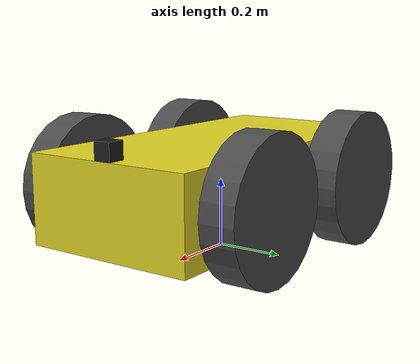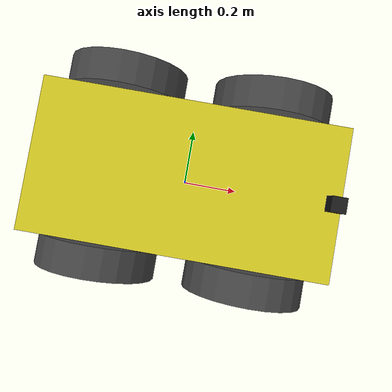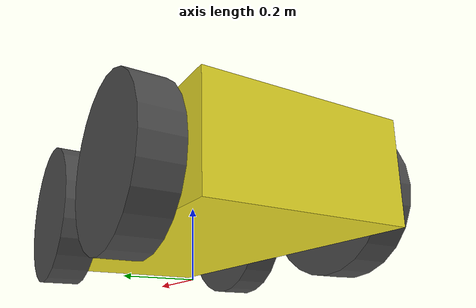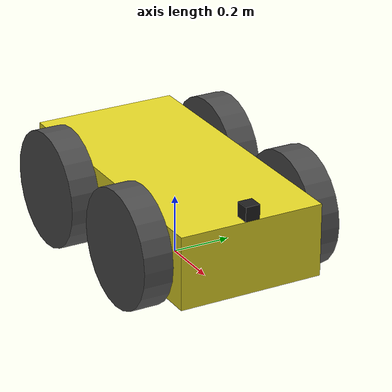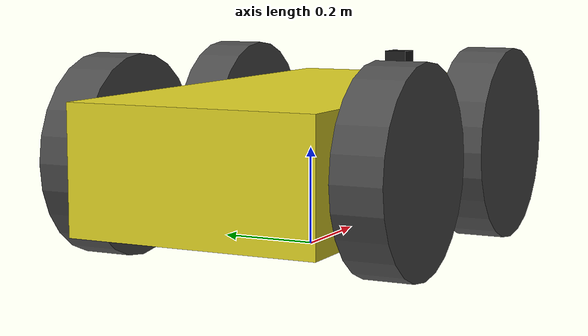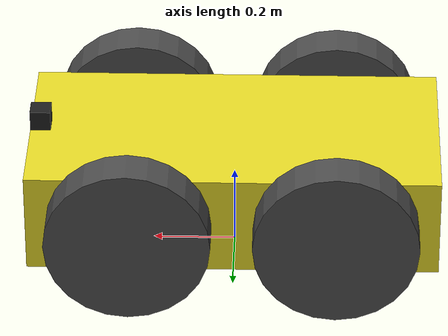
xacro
<?xml version="1.0"?>
<robot name="labrob" xmlns:xacro="http://www.ros.org/wiki/xacro">

  <!-- Included URDF/XACRO Files -->
  <xacro:include filename="$(find urdf_serp)/urdf/robot_movil/materials.urdf.xacro" />
  <xacro:include filename="$(find urdf_serp)/urdf/robot_movil/wheel.urdf.xacro" />

  <!-- PROPERTY LIST -->
  <!--All units in m-kg-s-radians unit system -->
  <property name="M_PI" value="3.1415926535897931" />

  <!-- Main Body-base -->
  <property name="base_x_size" value="1.0" />
  <property name="base_y_size" value="0.5" />
  <property name="base_z_size" value="0.25" />
  <property name="base_mass" value="35" /> <!-- in kg-->

  <!--Inertial macros for the box and cylinder. Units are kg*m^2-->
  <macro name="box_inertia" params="m x y z">
    <inertia  ixx="${m*(y*y+z*z)/12}" ixy = "0" ixz = "0"
              iyy="${m*(x*x+z*z)/12}" iyz = "0"
              izz="${m*(x*x+z*z)/12}" />
  </macro>

  <!-- BASE-FOOTPRINT -->
  <!-- base_footprint is a fictitious link(frame) that is on the ground right below base_link origin -->
  <link name="base_footprint">
    <inertial>
      <mass value="0.0001" />
      <origin xyz="0 0 0" />
      <inertia ixx="0.0001" ixy="0.0" ixz="0.0"
          iyy="0.0001" iyz="0.0"
          izz="0.0001" />
    </inertial>
    <visual>
        <origin xyz="0 0 0" rpy="0 0 0" />
        <geometry>
            <box size="0.001 0.001 0.001" />
        </geometry>
    </visual>
  </link>

  <gazebo reference="base_footprint">
    <turnGravityOff>false</turnGravityOff>
  </gazebo>

  <joint name="base_footprint_joint" type="fixed">
  <origin xyz="0 0 ${wheel_radius - base_z_origin_to_wheel_origin}" rpy="0 0 0" />
    <parent link="base_footprint"/>
    <child link="base_link" />
  </joint>

  <!-- BASE-LINK -->
  <!--Actual body/chassis of the robot-->
  <link name="base_link">
    <inertial>
      <mass value="${base_mass}" />
      <origin xyz="0 0 0" />
      <!--The 3x3 rotational inertia matrix. -->
      <box_inertia  m="${base_mass}" x="${base_x_size}" y="${base_y_size}" z="${base_z_size}"/>
    </inertial>
    <visual>
      <origin xyz="0 0 0" rpy="0 0 0" />
      <geometry>
        <box size="1 0.5 0.25"/>
      </geometry>
      <material name="Yellow" />
    </visual>
    <collision>
      <origin xyz="0 0 0" rpy="0 0 0 " />
      <geometry>
        <box size="1 0.5 0.25"/>
      </geometry>
    </collision>
  </link>
  <gazebo reference="base_link">
    <material>Gazebo/Green</material>
    <turnGravityOff>false</turnGravityOff>
  </gazebo>

  <!-- WHEELs -->
  <wheel fb="front" lr="right" parent="base_link" translateX="1" translateY="-1" flipY="-1"/>
  <wheel fb="front" lr="left" parent="base_link" translateX="1" translateY="1" flipY="-1"/>
  <wheel fb="back" lr="right" parent="base_link" translateX="-1" translateY="-1" flipY="-1"/>
  <wheel fb="back" lr="left" parent="base_link" translateX="-1" translateY="1" flipY="-1"/>

  <gazebo>
    <plugin name="skid_steer_drive_controller" filename="libgazebo_ros_skid_steer_drive.so">
      <alwaysOn>true</alwaysOn>
      <updateRate>100.0</updateRate>
      <leftFrontJoint>front_left_wheel_joint</leftFrontJoint>
      <rightFrontJoint>front_right_wheel_joint</rightFrontJoint>
      <leftRearJoint>back_left_wheel_joint</leftRearJoint>
      <rightRearJoint>back_right_wheel_joint</rightRearJoint>
      <wheelSeparation>${base_y_size}</wheelSeparation>
      <wheelDiameter>${2*wheel_radius}</wheelDiameter>
      <torque>35</torque>
      <broadcastTF>1</broadcastTF>
      <odometryFrame>map</odometryFrame>
      <commandTopic>cmd_vel</commandTopic>
      <odometryTopic>odom</odometryTopic>
      <robotBaseFrame>base_footprint</robotBaseFrame>
    </plugin>
    <plugin name="gazebo_ros_control" filename="libgazebo_ros_control.so" />
  </gazebo>

<!-- NUEVO -->

  <property name="camera_link" value="0.05" /> <!-- Size of square 'camera' box -->
  ...
  <!-- Camera -->
  <joint name="camera_joint" type="fixed">
    <axis xyz="0 1 0" />
    <origin xyz="${base_x_size/2-camera_link/2} 0 ${base_z_size/2 + camera_link/2}" rpy="0 0 0"/>
    <parent link="base_link"/>
    <child link="camera_link"/>
  </joint>

  <link name="camera_link">
    <collision>
      <origin xyz="0 0 0" rpy="0 0 0"/>
      <geometry>
		<box size="${camera_link} ${camera_link} ${camera_link}"/>
      </geometry>
    </collision>

    <visual>
      <origin xyz="0 0 0" rpy="0 0 0"/>
      <geometry>
		<box size="${camera_link} ${camera_link} ${camera_link}"/>
      </geometry>
      <material name="black"/>
    </visual>

    <inertial>
      <mass value="1e-5" />
      <origin xyz="0 0 0" rpy="0 0 0"/>
      <inertia ixx="1e-6" ixy="0" ixz="0" iyy="1e-6" iyz="0" izz="1e-6" />
    </inertial>
  </link>

</robot>

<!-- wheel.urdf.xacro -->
<robot name="wheel" xmlns:xacro="http://www.ros.org/wiki/xacro">

  <!-- Wheels -->
  <property name="wheel_radius" value="0.2" />
  <property name="wheel_height" value="0.1" />
  <property name="wheel_mass" value="2.5" /> <!-- in kg-->

  <property name="base_x_origin_to_wheel_origin" value="0.25" />
  <property name="base_y_origin_to_wheel_origin" value="0.3" />
  <property name="base_z_origin_to_wheel_origin" value="0.0" />

  <macro name="cylinder_inertia" params="m r h">
    <inertia  ixx="${m*(3*r*r+h*h)/12}" ixy = "0" ixz = "0"
              iyy="${m*(3*r*r+h*h)/12}" iyz = "0"
              izz="${m*r*r/2}" />
  </macro>

  <xacro:macro name="wheel" params="fb lr parent translateX translateY flipY"> <!--fb : front, back ; lr: left, right -->
    <link name="${fb}_${lr}_wheel">
      <visual>
        <origin xyz="0 0 0" rpy="${flipY*M_PI/2} 0 0" />
        <geometry>
          <cylinder length="${wheel_height}" radius="${wheel_radius}" />
        </geometry>
        <material name="DarkGray" />
      </visual>
      <collision>
        <origin xyz="0 0 0" rpy="${flipY*M_PI/2} 0 0" />
        <geometry>
          <cylinder length="${wheel_height}" radius="${wheel_radius}" />
        </geometry>
      </collision>
      <inertial>
        <mass value="${wheel_mass}" />
        <origin xyz="0 0 0" />
        <cylinder_inertia  m="${wheel_mass}" r="${wheel_radius}" h="${wheel_height}" />
      </inertial>
    </link>

    <gazebo reference="${fb}_${lr}_wheel">
      <mu1 value="1.0"/>
      <mu2 value="1.0"/>
      <kp  value="10000000.0" />
      <kd  value="1.0" />
      <fdir1 value="1 0 0"/>
      <material>Gazebo/Grey</material>
      <turnGravityOff>false</turnGravityOff>
    </gazebo>

    <joint name="${fb}_${lr}_wheel_joint" type="continuous">
      <parent link="${parent}"/>
      <child link="${fb}_${lr}_wheel"/>
      <origin xyz="${translateX * base_x_origin_to_wheel_origin} ${translateY * base_y_origin_to_wheel_origin} ${base_z_origin_to_wheel_origin}" rpy="0 0 0" />
      <axis xyz="0 1 0" rpy="0 0 0" />
      <limit effort="100" velocity="100"/>
      <joint_properties damping="0.0" friction="0.0"/>
    </joint>

    <!-- Transmission is important to link the joints and the controller -->
    <transmission name="${fb}_${lr}_wheel_joint_trans">
      <type>transmission_interface/SimpleTransmission</type>
      <joint name="${fb}_${lr}_wheel_joint">
	<hardwareInterface>EffortJointInterface</hardwareInterface>
      </joint >
      <actuator name="${fb}_${lr}_wheel_joint_motor">
        <hardwareInterface>EffortJointInterface</hardwareInterface>
        <mechanicalReduction>1</mechanicalReduction>
      </actuator>
    </transmission>

  </xacro:macro>
</robot>
